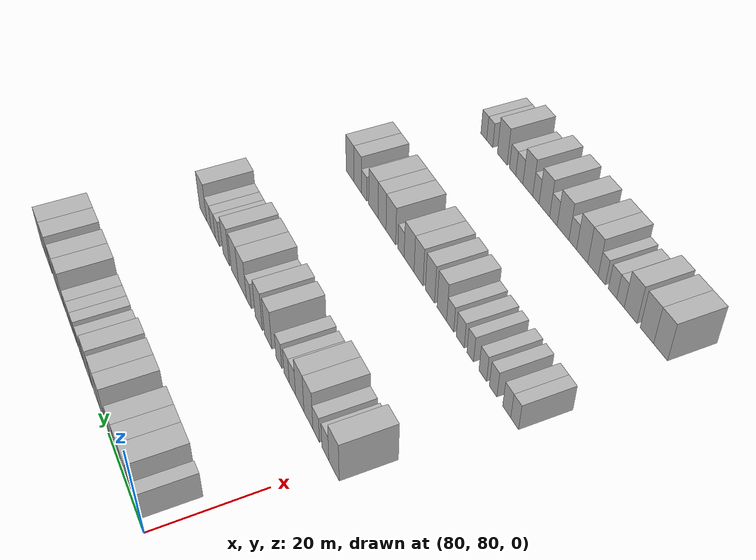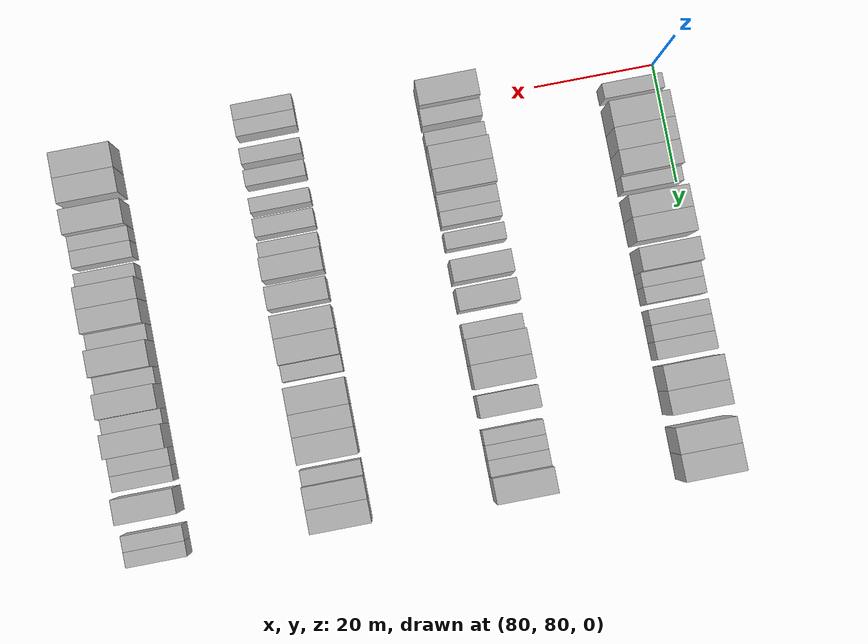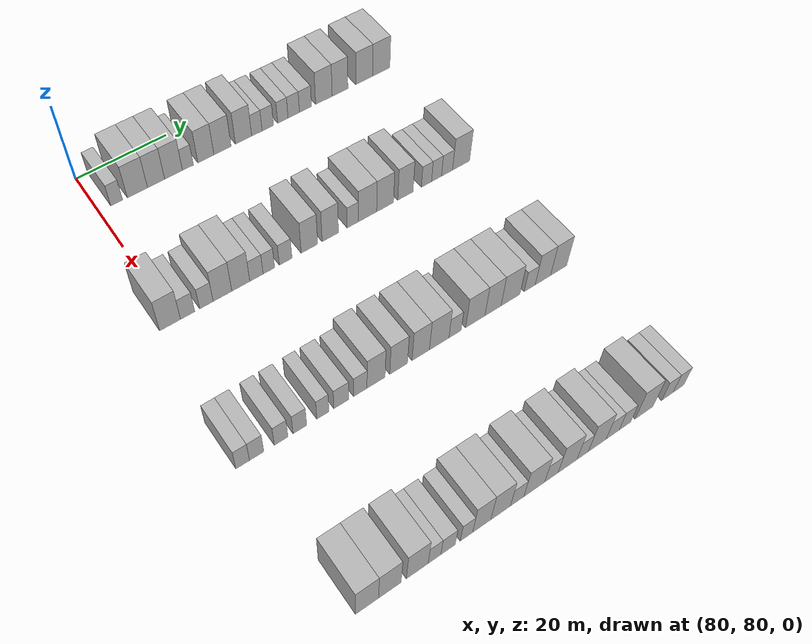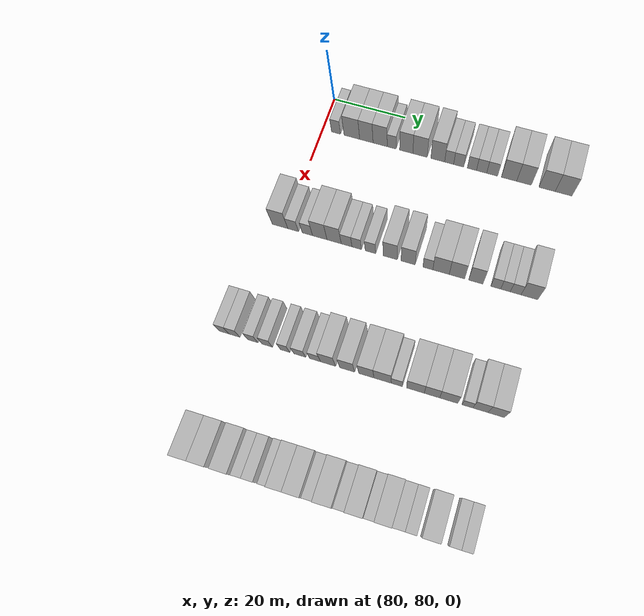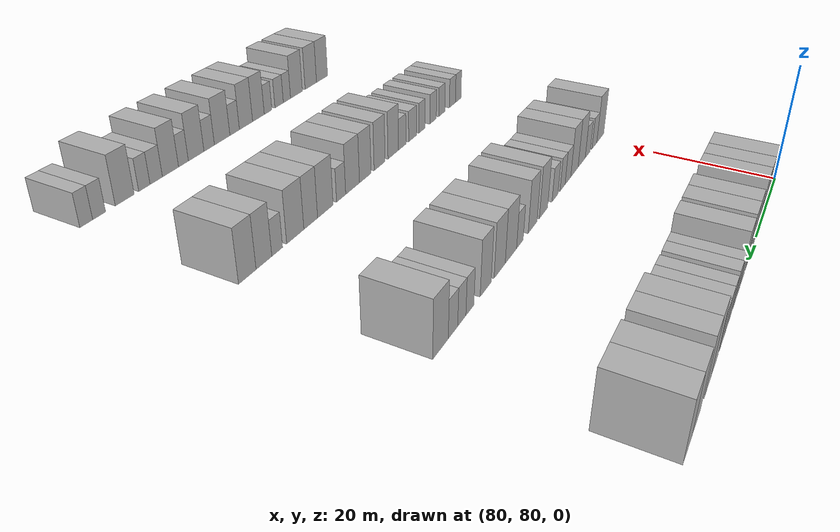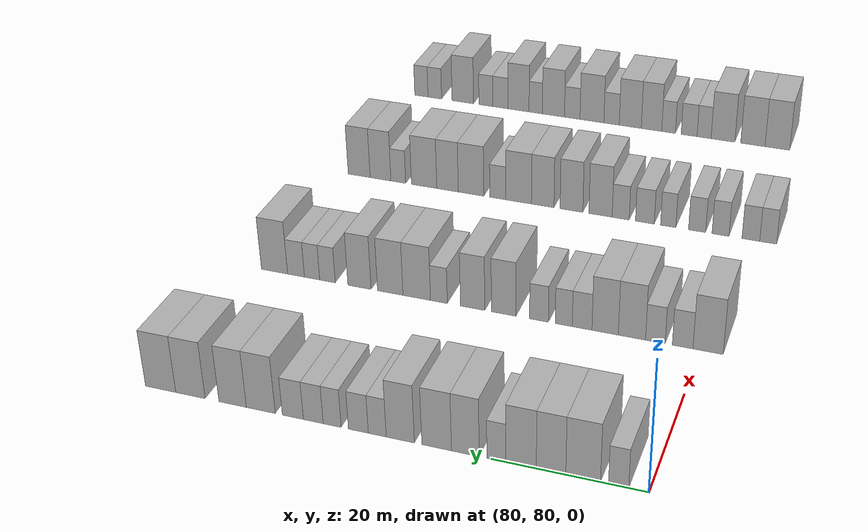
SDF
<sdf version="1.6">
 <world name="default">
  <model name="building_574">
   <static>1</static>
   <pose>85.0000 83.8093 0 0.000000 0.000000 0.000000</pose>
   <link name="link">
    <pose>0 0 3.00 0 0 0</pose>
    <collision name="collision"><geometry><box><size>10.0000 2.5199 6.0000</size></box></geometry></collision>
    <visual name="visual">
     <cast_shadows>0</cast_shadows>
     <geometry><box><size>10.0000 2.5199 6.0000</size></box></geometry>
     <material>
      <script>
       <uri>model://HANNAS_wall/materials/scripts</uri>
       <uri>model://HANNAS_wall/materials/textures</uri>
       <name>vrc/HANNAS_wall</name>
      </script>
     </material>
    </visual>
   </link>
  </model>
  <model name="building_575">
   <static>1</static>
   <pose>85.0000 88.2543 0 0.000000 0.000000 0.000000</pose>
   <link name="link">
    <pose>0 0 4.50 0 0 0</pose>
    <collision name="collision"><geometry><box><size>10.0000 4.3701 9.0000</size></box></geometry></collision>
    <visual name="visual">
     <cast_shadows>0</cast_shadows>
     <geometry><box><size>10.0000 4.3701 9.0000</size></box></geometry>
     <material>
      <script>
       <uri>model://HANNAS_wall/materials/scripts</uri>
       <uri>model://HANNAS_wall/materials/textures</uri>
       <name>vrc/HANNAS_wall</name>
      </script>
     </material>
    </visual>
   </link>
  </model>
  <model name="building_576">
   <static>1</static>
   <pose>85.0000 92.3146 0 0.000000 0.000000 0.000000</pose>
   <link name="link">
    <pose>0 0 4.50 0 0 0</pose>
    <collision name="collision"><geometry><box><size>10.0000 3.7505 9.0000</size></box></geometry></collision>
    <visual name="visual">
     <cast_shadows>0</cast_shadows>
     <geometry><box><size>10.0000 3.7505 9.0000</size></box></geometry>
     <material>
      <script>
       <uri>model://HANNAS_wall/materials/scripts</uri>
       <uri>model://HANNAS_wall/materials/textures</uri>
       <name>vrc/HANNAS_wall</name>
      </script>
     </material>
    </visual>
   </link>
  </model>
  <model name="building_577">
   <static>1</static>
   <pose>85.0000 96.1605 0 0.000000 0.000000 0.000000</pose>
   <link name="link">
    <pose>0 0 4.50 0 0 0</pose>
    <collision name="collision"><geometry><box><size>10.0000 3.9413 9.0000</size></box></geometry></collision>
    <visual name="visual">
     <cast_shadows>0</cast_shadows>
     <geometry><box><size>10.0000 3.9413 9.0000</size></box></geometry>
     <material>
      <script>
       <uri>model://HANNAS_wall/materials/scripts</uri>
       <uri>model://HANNAS_wall/materials/textures</uri>
       <name>vrc/HANNAS_wall</name>
      </script>
     </material>
    </visual>
   </link>
  </model>
  <model name="building_578">
   <static>1</static>
   <pose>85.0000 99.3531 0 0.000000 0.000000 0.000000</pose>
   <link name="link">
    <pose>0 0 3.00 0 0 0</pose>
    <collision name="collision"><geometry><box><size>10.0000 2.4439 6.0000</size></box></geometry></collision>
    <visual name="visual">
     <cast_shadows>0</cast_shadows>
     <geometry><box><size>10.0000 2.4439 6.0000</size></box></geometry>
     <material>
      <script>
       <uri>model://HANNAS_wall/materials/scripts</uri>
       <uri>model://HANNAS_wall/materials/textures</uri>
       <name>vrc/HANNAS_wall</name>
      </script>
     </material>
    </visual>
   </link>
  </model>
  <model name="building_579">
   <static>1</static>
   <pose>85.0000 103.3974 0 0.000000 0.000000 0.000000</pose>
   <link name="link">
    <pose>0 0 4.50 0 0 0</pose>
    <collision name="collision"><geometry><box><size>10.0000 3.6447 9.0000</size></box></geometry></collision>
    <visual name="visual">
     <cast_shadows>0</cast_shadows>
     <geometry><box><size>10.0000 3.6447 9.0000</size></box></geometry>
     <material>
      <script>
       <uri>model://HANNAS_wall/materials/scripts</uri>
       <uri>model://HANNAS_wall/materials/textures</uri>
       <name>vrc/HANNAS_wall</name>
      </script>
     </material>
    </visual>
   </link>
  </model>
  <model name="building_580">
   <static>1</static>
   <pose>85.0000 107.1895 0 0.000000 0.000000 0.000000</pose>
   <link name="link">
    <pose>0 0 4.50 0 0 0</pose>
    <collision name="collision"><geometry><box><size>10.0000 3.9395 9.0000</size></box></geometry></collision>
    <visual name="visual">
     <cast_shadows>0</cast_shadows>
     <geometry><box><size>10.0000 3.9395 9.0000</size></box></geometry>
     <material>
      <script>
       <uri>model://HANNAS_wall/materials/scripts</uri>
       <uri>model://HANNAS_wall/materials/textures</uri>
       <name>vrc/HANNAS_wall</name>
      </script>
     </material>
    </visual>
   </link>
  </model>
  <model name="building_581">
   <static>1</static>
   <pose>85.0000 112.0543 0 0.000000 0.000000 0.000000</pose>
   <link name="link">
    <pose>0 0 4.50 0 0 0</pose>
    <collision name="collision"><geometry><box><size>10.0000 3.7901 9.0000</size></box></geometry></collision>
    <visual name="visual">
     <cast_shadows>0</cast_shadows>
     <geometry><box><size>10.0000 3.7901 9.0000</size></box></geometry>
     <material>
      <script>
       <uri>model://HANNAS_wall/materials/scripts</uri>
       <uri>model://HANNAS_wall/materials/textures</uri>
       <name>vrc/HANNAS_wall</name>
      </script>
     </material>
    </visual>
   </link>
  </model>
  <model name="building_582">
   <static>1</static>
   <pose>85.0000 115.1677 0 0.000000 0.000000 0.000000</pose>
   <link name="link">
    <pose>0 0 3.00 0 0 0</pose>
    <collision name="collision"><geometry><box><size>10.0000 2.4367 6.0000</size></box></geometry></collision>
    <visual name="visual">
     <cast_shadows>0</cast_shadows>
     <geometry><box><size>10.0000 2.4367 6.0000</size></box></geometry>
     <material>
      <script>
       <uri>model://HANNAS_wall/materials/scripts</uri>
       <uri>model://HANNAS_wall/materials/textures</uri>
       <name>vrc/HANNAS_wall</name>
      </script>
     </material>
    </visual>
   </link>
  </model>
  <model name="building_583">
   <static>1</static>
   <pose>85.0000 117.7441 0 0.000000 0.000000 0.000000</pose>
   <link name="link">
    <pose>0 0 3.00 0 0 0</pose>
    <collision name="collision"><geometry><box><size>10.0000 2.7161 6.0000</size></box></geometry></collision>
    <visual name="visual">
     <cast_shadows>0</cast_shadows>
     <geometry><box><size>10.0000 2.7161 6.0000</size></box></geometry>
     <material>
      <script>
       <uri>model://HANNAS_wall/materials/scripts</uri>
       <uri>model://HANNAS_wall/materials/textures</uri>
       <name>vrc/HANNAS_wall</name>
      </script>
     </material>
    </visual>
   </link>
  </model>
  <model name="building_584">
   <static>1</static>
   <pose>85.0000 121.3436 0 0.000000 0.000000 0.000000</pose>
   <link name="link">
    <pose>0 0 3.00 0 0 0</pose>
    <collision name="collision"><geometry><box><size>10.0000 2.4829 6.0000</size></box></geometry></collision>
    <visual name="visual">
     <cast_shadows>0</cast_shadows>
     <geometry><box><size>10.0000 2.4829 6.0000</size></box></geometry>
     <material>
      <script>
       <uri>model://HANNAS_wall/materials/scripts</uri>
       <uri>model://HANNAS_wall/materials/textures</uri>
       <name>vrc/HANNAS_wall</name>
      </script>
     </material>
    </visual>
   </link>
  </model>
  <model name="building_585">
   <static>1</static>
   <pose>85.0000 123.9598 0 0.000000 0.000000 0.000000</pose>
   <link name="link">
    <pose>0 0 3.00 0 0 0</pose>
    <collision name="collision"><geometry><box><size>10.0000 2.7496 6.0000</size></box></geometry></collision>
    <visual name="visual">
     <cast_shadows>0</cast_shadows>
     <geometry><box><size>10.0000 2.7496 6.0000</size></box></geometry>
     <material>
      <script>
       <uri>model://HANNAS_wall/materials/scripts</uri>
       <uri>model://HANNAS_wall/materials/textures</uri>
       <name>vrc/HANNAS_wall</name>
      </script>
     </material>
    </visual>
   </link>
  </model>
  <model name="building_586">
   <static>1</static>
   <pose>85.0000 126.8068 0 0.000000 0.000000 0.000000</pose>
   <link name="link">
    <pose>0 0 3.00 0 0 0</pose>
    <collision name="collision"><geometry><box><size>10.0000 2.9442 6.0000</size></box></geometry></collision>
    <visual name="visual">
     <cast_shadows>0</cast_shadows>
     <geometry><box><size>10.0000 2.9442 6.0000</size></box></geometry>
     <material>
      <script>
       <uri>model://HANNAS_wall/materials/scripts</uri>
       <uri>model://HANNAS_wall/materials/textures</uri>
       <name>vrc/HANNAS_wall</name>
      </script>
     </material>
    </visual>
   </link>
  </model>
  <model name="building_587">
   <static>1</static>
   <pose>85.0000 131.3280 0 0.000000 0.000000 0.000000</pose>
   <link name="link">
    <pose>0 0 4.50 0 0 0</pose>
    <collision name="collision"><geometry><box><size>10.0000 4.0982 9.0000</size></box></geometry></collision>
    <visual name="visual">
     <cast_shadows>0</cast_shadows>
     <geometry><box><size>10.0000 4.0982 9.0000</size></box></geometry>
     <material>
      <script>
       <uri>model://HANNAS_wall/materials/scripts</uri>
       <uri>model://HANNAS_wall/materials/textures</uri>
       <name>vrc/HANNAS_wall</name>
      </script>
     </material>
    </visual>
   </link>
  </model>
  <model name="building_588">
   <static>1</static>
   <pose>85.0000 135.3434 0 0.000000 0.000000 0.000000</pose>
   <link name="link">
    <pose>0 0 4.50 0 0 0</pose>
    <collision name="collision"><geometry><box><size>10.0000 3.9326 9.0000</size></box></geometry></collision>
    <visual name="visual">
     <cast_shadows>0</cast_shadows>
     <geometry><box><size>10.0000 3.9326 9.0000</size></box></geometry>
     <material>
      <script>
       <uri>model://HANNAS_wall/materials/scripts</uri>
       <uri>model://HANNAS_wall/materials/textures</uri>
       <name>vrc/HANNAS_wall</name>
      </script>
     </material>
    </visual>
   </link>
  </model>
  <model name="building_589">
   <static>1</static>
   <pose>85.0000 141.4507 0 0.000000 0.000000 0.000000</pose>
   <link name="link">
    <pose>0 0 4.50 0 0 0</pose>
    <collision name="collision"><geometry><box><size>10.0000 4.2819 9.0000</size></box></geometry></collision>
    <visual name="visual">
     <cast_shadows>0</cast_shadows>
     <geometry><box><size>10.0000 4.2819 9.0000</size></box></geometry>
     <material>
      <script>
       <uri>model://HANNAS_wall/materials/scripts</uri>
       <uri>model://HANNAS_wall/materials/textures</uri>
       <name>vrc/HANNAS_wall</name>
      </script>
     </material>
    </visual>
   </link>
  </model>
  <model name="building_590">
   <static>1</static>
   <pose>85.0000 145.8151 0 0.000000 0.000000 0.000000</pose>
   <link name="link">
    <pose>0 0 4.50 0 0 0</pose>
    <collision name="collision"><geometry><box><size>10.0000 4.4469 9.0000</size></box></geometry></collision>
    <visual name="visual">
     <cast_shadows>0</cast_shadows>
     <geometry><box><size>10.0000 4.4469 9.0000</size></box></geometry>
     <material>
      <script>
       <uri>model://HANNAS_wall/materials/scripts</uri>
       <uri>model://HANNAS_wall/materials/textures</uri>
       <name>vrc/HANNAS_wall</name>
      </script>
     </material>
    </visual>
   </link>
  </model>
  <model name="building_804">
   <static>1</static>
   <pose>115.0000 78.9690 0 0.000000 0.000000 0.000000</pose>
   <link name="link">
    <pose>0 0 4.50 0 0 0</pose>
    <collision name="collision"><geometry><box><size>10.0000 4.1811 9.0000</size></box></geometry></collision>
    <visual name="visual">
     <cast_shadows>0</cast_shadows>
     <geometry><box><size>10.0000 4.1811 9.0000</size></box></geometry>
     <material>
      <script>
       <uri>model://HANNAS_wall/materials/scripts</uri>
       <uri>model://HANNAS_wall/materials/textures</uri>
       <name>vrc/HANNAS_wall</name>
      </script>
     </material>
    </visual>
   </link>
  </model>
  <model name="building_805">
   <static>1</static>
   <pose>115.0000 82.4966 0 0.000000 0.000000 0.000000</pose>
   <link name="link">
    <pose>0 0 3.00 0 0 0</pose>
    <collision name="collision"><geometry><box><size>10.0000 2.8740 6.0000</size></box></geometry></collision>
    <visual name="visual">
     <cast_shadows>0</cast_shadows>
     <geometry><box><size>10.0000 2.8740 6.0000</size></box></geometry>
     <material>
      <script>
       <uri>model://HANNAS_wall/materials/scripts</uri>
       <uri>model://HANNAS_wall/materials/textures</uri>
       <name>vrc/HANNAS_wall</name>
      </script>
     </material>
    </visual>
   </link>
  </model>
  <model name="building_806">
   <static>1</static>
   <pose>115.0000 86.3173 0 0.000000 0.000000 0.000000</pose>
   <link name="link">
    <pose>0 0 3.00 0 0 0</pose>
    <collision name="collision"><geometry><box><size>10.0000 2.7675 6.0000</size></box></geometry></collision>
    <visual name="visual">
     <cast_shadows>0</cast_shadows>
     <geometry><box><size>10.0000 2.7675 6.0000</size></box></geometry>
     <material>
      <script>
       <uri>model://HANNAS_wall/materials/scripts</uri>
       <uri>model://HANNAS_wall/materials/textures</uri>
       <name>vrc/HANNAS_wall</name>
      </script>
     </material>
    </visual>
   </link>
  </model>
  <model name="building_807">
   <static>1</static>
   <pose>115.0000 89.6279 0 0.000000 0.000000 0.000000</pose>
   <link name="link">
    <pose>0 0 4.50 0 0 0</pose>
    <collision name="collision"><geometry><box><size>10.0000 3.8535 9.0000</size></box></geometry></collision>
    <visual name="visual">
     <cast_shadows>0</cast_shadows>
     <geometry><box><size>10.0000 3.8535 9.0000</size></box></geometry>
     <material>
      <script>
       <uri>model://HANNAS_wall/materials/scripts</uri>
       <uri>model://HANNAS_wall/materials/textures</uri>
       <name>vrc/HANNAS_wall</name>
      </script>
     </material>
    </visual>
   </link>
  </model>
  <model name="building_808">
   <static>1</static>
   <pose>115.0000 93.4406 0 0.000000 0.000000 0.000000</pose>
   <link name="link">
    <pose>0 0 4.50 0 0 0</pose>
    <collision name="collision"><geometry><box><size>10.0000 3.7720 9.0000</size></box></geometry></collision>
    <visual name="visual">
     <cast_shadows>0</cast_shadows>
     <geometry><box><size>10.0000 3.7720 9.0000</size></box></geometry>
     <material>
      <script>
       <uri>model://HANNAS_wall/materials/scripts</uri>
       <uri>model://HANNAS_wall/materials/textures</uri>
       <name>vrc/HANNAS_wall</name>
      </script>
     </material>
    </visual>
   </link>
  </model>
  <model name="building_809">
   <static>1</static>
   <pose>115.0000 96.7467 0 0.000000 0.000000 0.000000</pose>
   <link name="link">
    <pose>0 0 3.00 0 0 0</pose>
    <collision name="collision"><geometry><box><size>10.0000 2.8402 6.0000</size></box></geometry></collision>
    <visual name="visual">
     <cast_shadows>0</cast_shadows>
     <geometry><box><size>10.0000 2.8402 6.0000</size></box></geometry>
     <material>
      <script>
       <uri>model://HANNAS_wall/materials/scripts</uri>
       <uri>model://HANNAS_wall/materials/textures</uri>
       <name>vrc/HANNAS_wall</name>
      </script>
     </material>
    </visual>
   </link>
  </model>
  <model name="building_810">
   <static>1</static>
   <pose>115.0000 99.4016 0 0.000000 0.000000 0.000000</pose>
   <link name="link">
    <pose>0 0 3.00 0 0 0</pose>
    <collision name="collision"><geometry><box><size>10.0000 2.4697 6.0000</size></box></geometry></collision>
    <visual name="visual">
     <cast_shadows>0</cast_shadows>
     <geometry><box><size>10.0000 2.4697 6.0000</size></box></geometry>
     <material>
      <script>
       <uri>model://HANNAS_wall/materials/scripts</uri>
       <uri>model://HANNAS_wall/materials/textures</uri>
       <name>vrc/HANNAS_wall</name>
      </script>
     </material>
    </visual>
   </link>
  </model>
  <model name="building_811">
   <static>1</static>
   <pose>115.0000 103.0163 0 0.000000 0.000000 0.000000</pose>
   <link name="link">
    <pose>0 0 3.00 0 0 0</pose>
    <collision name="collision"><geometry><box><size>10.0000 2.7596 6.0000</size></box></geometry></collision>
    <visual name="visual">
     <cast_shadows>0</cast_shadows>
     <geometry><box><size>10.0000 2.7596 6.0000</size></box></geometry>
     <material>
      <script>
       <uri>model://HANNAS_wall/materials/scripts</uri>
       <uri>model://HANNAS_wall/materials/textures</uri>
       <name>vrc/HANNAS_wall</name>
      </script>
     </material>
    </visual>
   </link>
  </model>
  <model name="building_812">
   <static>1</static>
   <pose>115.0000 108.2145 0 0.000000 0.000000 0.000000</pose>
   <link name="link">
    <pose>0 0 4.50 0 0 0</pose>
    <collision name="collision"><geometry><box><size>10.0000 3.6370 9.0000</size></box></geometry></collision>
    <visual name="visual">
     <cast_shadows>0</cast_shadows>
     <geometry><box><size>10.0000 3.6370 9.0000</size></box></geometry>
     <material>
      <script>
       <uri>model://HANNAS_wall/materials/scripts</uri>
       <uri>model://HANNAS_wall/materials/textures</uri>
       <name>vrc/HANNAS_wall</name>
      </script>
     </material>
    </visual>
   </link>
  </model>
  <model name="building_813">
   <static>1</static>
   <pose>115.0000 112.8568 0 0.000000 0.000000 0.000000</pose>
   <link name="link">
    <pose>0 0 4.50 0 0 0</pose>
    <collision name="collision"><geometry><box><size>10.0000 3.6476 9.0000</size></box></geometry></collision>
    <visual name="visual">
     <cast_shadows>0</cast_shadows>
     <geometry><box><size>10.0000 3.6476 9.0000</size></box></geometry>
     <material>
      <script>
       <uri>model://HANNAS_wall/materials/scripts</uri>
       <uri>model://HANNAS_wall/materials/textures</uri>
       <name>vrc/HANNAS_wall</name>
      </script>
     </material>
    </visual>
   </link>
  </model>
  <model name="building_814">
   <static>1</static>
   <pose>115.0000 117.9589 0 0.000000 0.000000 0.000000</pose>
   <link name="link">
    <pose>0 0 3.00 0 0 0</pose>
    <collision name="collision"><geometry><box><size>10.0000 2.5567 6.0000</size></box></geometry></collision>
    <visual name="visual">
     <cast_shadows>0</cast_shadows>
     <geometry><box><size>10.0000 2.5567 6.0000</size></box></geometry>
     <material>
      <script>
       <uri>model://HANNAS_wall/materials/scripts</uri>
       <uri>model://HANNAS_wall/materials/textures</uri>
       <name>vrc/HANNAS_wall</name>
      </script>
     </material>
    </visual>
   </link>
  </model>
  <model name="building_815">
   <static>1</static>
   <pose>115.0000 121.3464 0 0.000000 0.000000 0.000000</pose>
   <link name="link">
    <pose>0 0 4.50 0 0 0</pose>
    <collision name="collision"><geometry><box><size>10.0000 4.2182 9.0000</size></box></geometry></collision>
    <visual name="visual">
     <cast_shadows>0</cast_shadows>
     <geometry><box><size>10.0000 4.2182 9.0000</size></box></geometry>
     <material>
      <script>
       <uri>model://HANNAS_wall/materials/scripts</uri>
       <uri>model://HANNAS_wall/materials/textures</uri>
       <name>vrc/HANNAS_wall</name>
      </script>
     </material>
    </visual>
   </link>
  </model>
  <model name="building_816">
   <static>1</static>
   <pose>115.0000 125.4284 0 0.000000 0.000000 0.000000</pose>
   <link name="link">
    <pose>0 0 4.50 0 0 0</pose>
    <collision name="collision"><geometry><box><size>10.0000 3.9459 9.0000</size></box></geometry></collision>
    <visual name="visual">
     <cast_shadows>0</cast_shadows>
     <geometry><box><size>10.0000 3.9459 9.0000</size></box></geometry>
     <material>
      <script>
       <uri>model://HANNAS_wall/materials/scripts</uri>
       <uri>model://HANNAS_wall/materials/textures</uri>
       <name>vrc/HANNAS_wall</name>
      </script>
     </material>
    </visual>
   </link>
  </model>
  <model name="building_817">
   <static>1</static>
   <pose>115.0000 130.2184 0 0.000000 0.000000 0.000000</pose>
   <link name="link">
    <pose>0 0 4.50 0 0 0</pose>
    <collision name="collision"><geometry><box><size>10.0000 3.6341 9.0000</size></box></geometry></collision>
    <visual name="visual">
     <cast_shadows>0</cast_shadows>
     <geometry><box><size>10.0000 3.6341 9.0000</size></box></geometry>
     <material>
      <script>
       <uri>model://HANNAS_wall/materials/scripts</uri>
       <uri>model://HANNAS_wall/materials/textures</uri>
       <name>vrc/HANNAS_wall</name>
      </script>
     </material>
    </visual>
   </link>
  </model>
  <model name="building_818">
   <static>1</static>
   <pose>115.0000 135.2668 0 0.000000 0.000000 0.000000</pose>
   <link name="link">
    <pose>0 0 3.00 0 0 0</pose>
    <collision name="collision"><geometry><box><size>10.0000 2.4627 6.0000</size></box></geometry></collision>
    <visual name="visual">
     <cast_shadows>0</cast_shadows>
     <geometry><box><size>10.0000 2.4627 6.0000</size></box></geometry>
     <material>
      <script>
       <uri>model://HANNAS_wall/materials/scripts</uri>
       <uri>model://HANNAS_wall/materials/textures</uri>
       <name>vrc/HANNAS_wall</name>
      </script>
     </material>
    </visual>
   </link>
  </model>
  <model name="building_819">
   <static>1</static>
   <pose>115.0000 137.7142 0 0.000000 0.000000 0.000000</pose>
   <link name="link">
    <pose>0 0 3.00 0 0 0</pose>
    <collision name="collision"><geometry><box><size>10.0000 2.4321 6.0000</size></box></geometry></collision>
    <visual name="visual">
     <cast_shadows>0</cast_shadows>
     <geometry><box><size>10.0000 2.4321 6.0000</size></box></geometry>
     <material>
      <script>
       <uri>model://HANNAS_wall/materials/scripts</uri>
       <uri>model://HANNAS_wall/materials/textures</uri>
       <name>vrc/HANNAS_wall</name>
      </script>
     </material>
    </visual>
   </link>
  </model>
  <model name="building_820">
   <static>1</static>
   <pose>115.0000 140.2826 0 0.000000 0.000000 0.000000</pose>
   <link name="link">
    <pose>0 0 3.00 0 0 0</pose>
    <collision name="collision"><geometry><box><size>10.0000 2.7048 6.0000</size></box></geometry></collision>
    <visual name="visual">
     <cast_shadows>0</cast_shadows>
     <geometry><box><size>10.0000 2.7048 6.0000</size></box></geometry>
     <material>
      <script>
       <uri>model://HANNAS_wall/materials/scripts</uri>
       <uri>model://HANNAS_wall/materials/textures</uri>
       <name>vrc/HANNAS_wall</name>
      </script>
     </material>
    </visual>
   </link>
  </model>
  <model name="building_821">
   <static>1</static>
   <pose>115.0000 143.7465 0 0.000000 0.000000 0.000000</pose>
   <link name="link">
    <pose>0 0 4.50 0 0 0</pose>
    <collision name="collision"><geometry><box><size>10.0000 4.2231 9.0000</size></box></geometry></collision>
    <visual name="visual">
     <cast_shadows>0</cast_shadows>
     <geometry><box><size>10.0000 4.2231 9.0000</size></box></geometry>
     <material>
      <script>
       <uri>model://HANNAS_wall/materials/scripts</uri>
       <uri>model://HANNAS_wall/materials/textures</uri>
       <name>vrc/HANNAS_wall</name>
      </script>
     </material>
    </visual>
   </link>
  </model>
  <model name="building_1034">
   <static>1</static>
   <pose>145.0000 75.8199 0 0.000000 0.000000 0.000000</pose>
   <link name="link">
    <pose>0 0 3.00 0 0 0</pose>
    <collision name="collision"><geometry><box><size>10.0000 2.5758 6.0000</size></box></geometry></collision>
    <visual name="visual">
     <cast_shadows>0</cast_shadows>
     <geometry><box><size>10.0000 2.5758 6.0000</size></box></geometry>
     <material>
      <script>
       <uri>model://HANNAS_wall/materials/scripts</uri>
       <uri>model://HANNAS_wall/materials/textures</uri>
       <name>vrc/HANNAS_wall</name>
      </script>
     </material>
    </visual>
   </link>
  </model>
  <model name="building_1035">
   <static>1</static>
   <pose>145.0000 78.4676 0 0.000000 0.000000 0.000000</pose>
   <link name="link">
    <pose>0 0 3.00 0 0 0</pose>
    <collision name="collision"><geometry><box><size>10.0000 2.7195 6.0000</size></box></geometry></collision>
    <visual name="visual">
     <cast_shadows>0</cast_shadows>
     <geometry><box><size>10.0000 2.7195 6.0000</size></box></geometry>
     <material>
      <script>
       <uri>model://HANNAS_wall/materials/scripts</uri>
       <uri>model://HANNAS_wall/materials/textures</uri>
       <name>vrc/HANNAS_wall</name>
      </script>
     </material>
    </visual>
   </link>
  </model>
  <model name="building_1036">
   <static>1</static>
   <pose>145.0000 83.1409 0 0.000000 0.000000 0.000000</pose>
   <link name="link">
    <pose>0 0 3.00 0 0 0</pose>
    <collision name="collision"><geometry><box><size>10.0000 2.6271 6.0000</size></box></geometry></collision>
    <visual name="visual">
     <cast_shadows>0</cast_shadows>
     <geometry><box><size>10.0000 2.6271 6.0000</size></box></geometry>
     <material>
      <script>
       <uri>model://HANNAS_wall/materials/scripts</uri>
       <uri>model://HANNAS_wall/materials/textures</uri>
       <name>vrc/HANNAS_wall</name>
      </script>
     </material>
    </visual>
   </link>
  </model>
  <model name="building_1037">
   <static>1</static>
   <pose>145.0000 86.7867 0 0.000000 0.000000 0.000000</pose>
   <link name="link">
    <pose>0 0 3.00 0 0 0</pose>
    <collision name="collision"><geometry><box><size>10.0000 2.6646 6.0000</size></box></geometry></collision>
    <visual name="visual">
     <cast_shadows>0</cast_shadows>
     <geometry><box><size>10.0000 2.6646 6.0000</size></box></geometry>
     <material>
      <script>
       <uri>model://HANNAS_wall/materials/scripts</uri>
       <uri>model://HANNAS_wall/materials/textures</uri>
       <name>vrc/HANNAS_wall</name>
      </script>
     </material>
    </visual>
   </link>
  </model>
  <model name="building_1038">
   <static>1</static>
   <pose>145.0000 91.3214 0 0.000000 0.000000 0.000000</pose>
   <link name="link">
    <pose>0 0 3.00 0 0 0</pose>
    <collision name="collision"><geometry><box><size>10.0000 2.4048 6.0000</size></box></geometry></collision>
    <visual name="visual">
     <cast_shadows>0</cast_shadows>
     <geometry><box><size>10.0000 2.4048 6.0000</size></box></geometry>
     <material>
      <script>
       <uri>model://HANNAS_wall/materials/scripts</uri>
       <uri>model://HANNAS_wall/materials/textures</uri>
       <name>vrc/HANNAS_wall</name>
      </script>
     </material>
    </visual>
   </link>
  </model>
  <model name="building_1039">
   <static>1</static>
   <pose>145.0000 95.0201 0 0.000000 0.000000 0.000000</pose>
   <link name="link">
    <pose>0 0 3.00 0 0 0</pose>
    <collision name="collision"><geometry><box><size>10.0000 2.9926 6.0000</size></box></geometry></collision>
    <visual name="visual">
     <cast_shadows>0</cast_shadows>
     <geometry><box><size>10.0000 2.9926 6.0000</size></box></geometry>
     <material>
      <script>
       <uri>model://HANNAS_wall/materials/scripts</uri>
       <uri>model://HANNAS_wall/materials/textures</uri>
       <name>vrc/HANNAS_wall</name>
      </script>
     </material>
    </visual>
   </link>
  </model>
  <model name="building_1040">
   <static>1</static>
   <pose>145.0000 98.8875 0 0.000000 0.000000 0.000000</pose>
   <link name="link">
    <pose>0 0 3.00 0 0 0</pose>
    <collision name="collision"><geometry><box><size>10.0000 2.7421 6.0000</size></box></geometry></collision>
    <visual name="visual">
     <cast_shadows>0</cast_shadows>
     <geometry><box><size>10.0000 2.7421 6.0000</size></box></geometry>
     <material>
      <script>
       <uri>model://HANNAS_wall/materials/scripts</uri>
       <uri>model://HANNAS_wall/materials/textures</uri>
       <name>vrc/HANNAS_wall</name>
      </script>
     </material>
    </visual>
   </link>
  </model>
  <model name="building_1041">
   <static>1</static>
   <pose>145.0000 102.1334 0 0.000000 0.000000 0.000000</pose>
   <link name="link">
    <pose>0 0 4.50 0 0 0</pose>
    <collision name="collision"><geometry><box><size>10.0000 3.7497 9.0000</size></box></geometry></collision>
    <visual name="visual">
     <cast_shadows>0</cast_shadows>
     <geometry><box><size>10.0000 3.7497 9.0000</size></box></geometry>
     <material>
      <script>
       <uri>model://HANNAS_wall/materials/scripts</uri>
       <uri>model://HANNAS_wall/materials/textures</uri>
       <name>vrc/HANNAS_wall</name>
      </script>
     </material>
    </visual>
   </link>
  </model>
  <model name="building_1042">
   <static>1</static>
   <pose>145.0000 106.8622 0 0.000000 0.000000 0.000000</pose>
   <link name="link">
    <pose>0 0 4.50 0 0 0</pose>
    <collision name="collision"><geometry><box><size>10.0000 3.7079 9.0000</size></box></geometry></collision>
    <visual name="visual">
     <cast_shadows>0</cast_shadows>
     <geometry><box><size>10.0000 3.7079 9.0000</size></box></geometry>
     <material>
      <script>
       <uri>model://HANNAS_wall/materials/scripts</uri>
       <uri>model://HANNAS_wall/materials/textures</uri>
       <name>vrc/HANNAS_wall</name>
      </script>
     </material>
    </visual>
   </link>
  </model>
  <model name="building_1043">
   <static>1</static>
   <pose>145.0000 111.5797 0 0.000000 0.000000 0.000000</pose>
   <link name="link">
    <pose>0 0 4.50 0 0 0</pose>
    <collision name="collision"><geometry><box><size>10.0000 3.7270 9.0000</size></box></geometry></collision>
    <visual name="visual">
     <cast_shadows>0</cast_shadows>
     <geometry><box><size>10.0000 3.7270 9.0000</size></box></geometry>
     <material>
      <script>
       <uri>model://HANNAS_wall/materials/scripts</uri>
       <uri>model://HANNAS_wall/materials/textures</uri>
       <name>vrc/HANNAS_wall</name>
      </script>
     </material>
    </visual>
   </link>
  </model>
  <model name="building_1044">
   <static>1</static>
   <pose>145.0000 115.5649 0 0.000000 0.000000 0.000000</pose>
   <link name="link">
    <pose>0 0 4.50 0 0 0</pose>
    <collision name="collision"><geometry><box><size>10.0000 4.2435 9.0000</size></box></geometry></collision>
    <visual name="visual">
     <cast_shadows>0</cast_shadows>
     <geometry><box><size>10.0000 4.2435 9.0000</size></box></geometry>
     <material>
      <script>
       <uri>model://HANNAS_wall/materials/scripts</uri>
       <uri>model://HANNAS_wall/materials/textures</uri>
       <name>vrc/HANNAS_wall</name>
      </script>
     </material>
    </visual>
   </link>
  </model>
  <model name="building_1045">
   <static>1</static>
   <pose>145.0000 119.0385 0 0.000000 0.000000 0.000000</pose>
   <link name="link">
    <pose>0 0 3.00 0 0 0</pose>
    <collision name="collision"><geometry><box><size>10.0000 2.7037 6.0000</size></box></geometry></collision>
    <visual name="visual">
     <cast_shadows>0</cast_shadows>
     <geometry><box><size>10.0000 2.7037 6.0000</size></box></geometry>
     <material>
      <script>
       <uri>model://HANNAS_wall/materials/scripts</uri>
       <uri>model://HANNAS_wall/materials/textures</uri>
       <name>vrc/HANNAS_wall</name>
      </script>
     </material>
    </visual>
   </link>
  </model>
  <model name="building_1046">
   <static>1</static>
   <pose>145.0000 123.5517 0 0.000000 0.000000 0.000000</pose>
   <link name="link">
    <pose>0 0 4.50 0 0 0</pose>
    <collision name="collision"><geometry><box><size>10.0000 4.3227 9.0000</size></box></geometry></collision>
    <visual name="visual">
     <cast_shadows>0</cast_shadows>
     <geometry><box><size>10.0000 4.3227 9.0000</size></box></geometry>
     <material>
      <script>
       <uri>model://HANNAS_wall/materials/scripts</uri>
       <uri>model://HANNAS_wall/materials/textures</uri>
       <name>vrc/HANNAS_wall</name>
      </script>
     </material>
    </visual>
   </link>
  </model>
  <model name="building_1047">
   <static>1</static>
   <pose>145.0000 127.5515 0 0.000000 0.000000 0.000000</pose>
   <link name="link">
    <pose>0 0 4.50 0 0 0</pose>
    <collision name="collision"><geometry><box><size>10.0000 3.6769 9.0000</size></box></geometry></collision>
    <visual name="visual">
     <cast_shadows>0</cast_shadows>
     <geometry><box><size>10.0000 3.6769 9.0000</size></box></geometry>
     <material>
      <script>
       <uri>model://HANNAS_wall/materials/scripts</uri>
       <uri>model://HANNAS_wall/materials/textures</uri>
       <name>vrc/HANNAS_wall</name>
      </script>
     </material>
    </visual>
   </link>
  </model>
  <model name="building_1048">
   <static>1</static>
   <pose>145.0000 131.5744 0 0.000000 0.000000 0.000000</pose>
   <link name="link">
    <pose>0 0 4.50 0 0 0</pose>
    <collision name="collision"><geometry><box><size>10.0000 4.3689 9.0000</size></box></geometry></collision>
    <visual name="visual">
     <cast_shadows>0</cast_shadows>
     <geometry><box><size>10.0000 4.3689 9.0000</size></box></geometry>
     <material>
      <script>
       <uri>model://HANNAS_wall/materials/scripts</uri>
       <uri>model://HANNAS_wall/materials/textures</uri>
       <name>vrc/HANNAS_wall</name>
      </script>
     </material>
    </visual>
   </link>
  </model>
  <model name="building_1049">
   <static>1</static>
   <pose>145.0000 136.0474 0 0.000000 0.000000 0.000000</pose>
   <link name="link">
    <pose>0 0 3.00 0 0 0</pose>
    <collision name="collision"><geometry><box><size>10.0000 2.5770 6.0000</size></box></geometry></collision>
    <visual name="visual">
     <cast_shadows>0</cast_shadows>
     <geometry><box><size>10.0000 2.5770 6.0000</size></box></geometry>
     <material>
      <script>
       <uri>model://HANNAS_wall/materials/scripts</uri>
       <uri>model://HANNAS_wall/materials/textures</uri>
       <name>vrc/HANNAS_wall</name>
      </script>
     </material>
    </visual>
   </link>
  </model>
  <model name="building_1050">
   <static>1</static>
   <pose>145.0000 139.1558 0 0.000000 0.000000 0.000000</pose>
   <link name="link">
    <pose>0 0 4.50 0 0 0</pose>
    <collision name="collision"><geometry><box><size>10.0000 3.6399 9.0000</size></box></geometry></collision>
    <visual name="visual">
     <cast_shadows>0</cast_shadows>
     <geometry><box><size>10.0000 3.6399 9.0000</size></box></geometry>
     <material>
      <script>
       <uri>model://HANNAS_wall/materials/scripts</uri>
       <uri>model://HANNAS_wall/materials/textures</uri>
       <name>vrc/HANNAS_wall</name>
      </script>
     </material>
    </visual>
   </link>
  </model>
  <model name="building_1051">
   <static>1</static>
   <pose>145.0000 142.9027 0 0.000000 0.000000 0.000000</pose>
   <link name="link">
    <pose>0 0 4.50 0 0 0</pose>
    <collision name="collision"><geometry><box><size>10.0000 3.8538 9.0000</size></box></geometry></collision>
    <visual name="visual">
     <cast_shadows>0</cast_shadows>
     <geometry><box><size>10.0000 3.8538 9.0000</size></box></geometry>
     <material>
      <script>
       <uri>model://HANNAS_wall/materials/scripts</uri>
       <uri>model://HANNAS_wall/materials/textures</uri>
       <name>vrc/HANNAS_wall</name>
      </script>
     </material>
    </visual>
   </link>
  </model>
  <model name="building_1267">
   <static>1</static>
   <pose>175.0000 79.3275 0 0.000000 0.000000 0.000000</pose>
   <link name="link">
    <pose>0 0 4.50 0 0 0</pose>
    <collision name="collision"><geometry><box><size>10.0000 4.1845 9.0000</size></box></geometry></collision>
    <visual name="visual">
     <cast_shadows>0</cast_shadows>
     <geometry><box><size>10.0000 4.1845 9.0000</size></box></geometry>
     <material>
      <script>
       <uri>model://HANNAS_wall/materials/scripts</uri>
       <uri>model://HANNAS_wall/materials/textures</uri>
       <name>vrc/HANNAS_wall</name>
      </script>
     </material>
    </visual>
   </link>
  </model>
  <model name="building_1268">
   <static>1</static>
   <pose>175.0000 83.4908 0 0.000000 0.000000 0.000000</pose>
   <link name="link">
    <pose>0 0 4.50 0 0 0</pose>
    <collision name="collision"><geometry><box><size>10.0000 4.1421 9.0000</size></box></geometry></collision>
    <visual name="visual">
     <cast_shadows>0</cast_shadows>
     <geometry><box><size>10.0000 4.1421 9.0000</size></box></geometry>
     <material>
      <script>
       <uri>model://HANNAS_wall/materials/scripts</uri>
       <uri>model://HANNAS_wall/materials/textures</uri>
       <name>vrc/HANNAS_wall</name>
      </script>
     </material>
    </visual>
   </link>
  </model>
  <model name="building_1269">
   <static>1</static>
   <pose>175.0000 88.6101 0 0.000000 0.000000 0.000000</pose>
   <link name="link">
    <pose>0 0 4.50 0 0 0</pose>
    <collision name="collision"><geometry><box><size>10.0000 4.0965 9.0000</size></box></geometry></collision>
    <visual name="visual">
     <cast_shadows>0</cast_shadows>
     <geometry><box><size>10.0000 4.0965 9.0000</size></box></geometry>
     <material>
      <script>
       <uri>model://HANNAS_wall/materials/scripts</uri>
       <uri>model://HANNAS_wall/materials/textures</uri>
       <name>vrc/HANNAS_wall</name>
      </script>
     </material>
    </visual>
   </link>
  </model>
  <model name="building_1270">
   <static>1</static>
   <pose>175.0000 91.8729 0 0.000000 0.000000 0.000000</pose>
   <link name="link">
    <pose>0 0 3.00 0 0 0</pose>
    <collision name="collision"><geometry><box><size>10.0000 2.4290 6.0000</size></box></geometry></collision>
    <visual name="visual">
     <cast_shadows>0</cast_shadows>
     <geometry><box><size>10.0000 2.4290 6.0000</size></box></geometry>
     <material>
      <script>
       <uri>model://HANNAS_wall/materials/scripts</uri>
       <uri>model://HANNAS_wall/materials/textures</uri>
       <name>vrc/HANNAS_wall</name>
      </script>
     </material>
    </visual>
   </link>
  </model>
  <model name="building_1271">
   <static>1</static>
   <pose>175.0000 94.4735 0 0.000000 0.000000 0.000000</pose>
   <link name="link">
    <pose>0 0 3.00 0 0 0</pose>
    <collision name="collision"><geometry><box><size>10.0000 2.7721 6.0000</size></box></geometry></collision>
    <visual name="visual">
     <cast_shadows>0</cast_shadows>
     <geometry><box><size>10.0000 2.7721 6.0000</size></box></geometry>
     <material>
      <script>
       <uri>model://HANNAS_wall/materials/scripts</uri>
       <uri>model://HANNAS_wall/materials/textures</uri>
       <name>vrc/HANNAS_wall</name>
      </script>
     </material>
    </visual>
   </link>
  </model>
  <model name="building_1272">
   <static>1</static>
   <pose>175.0000 98.0664 0 0.000000 0.000000 0.000000</pose>
   <link name="link">
    <pose>0 0 3.00 0 0 0</pose>
    <collision name="collision"><geometry><box><size>10.0000 2.4138 6.0000</size></box></geometry></collision>
    <visual name="visual">
     <cast_shadows>0</cast_shadows>
     <geometry><box><size>10.0000 2.4138 6.0000</size></box></geometry>
     <material>
      <script>
       <uri>model://HANNAS_wall/materials/scripts</uri>
       <uri>model://HANNAS_wall/materials/textures</uri>
       <name>vrc/HANNAS_wall</name>
      </script>
     </material>
    </visual>
   </link>
  </model>
  <model name="building_1273">
   <static>1</static>
   <pose>175.0000 101.0788 0 0.000000 0.000000 0.000000</pose>
   <link name="link">
    <pose>0 0 4.50 0 0 0</pose>
    <collision name="collision"><geometry><box><size>10.0000 3.6111 9.0000</size></box></geometry></collision>
    <visual name="visual">
     <cast_shadows>0</cast_shadows>
     <geometry><box><size>10.0000 3.6111 9.0000</size></box></geometry>
     <material>
      <script>
       <uri>model://HANNAS_wall/materials/scripts</uri>
       <uri>model://HANNAS_wall/materials/textures</uri>
       <name>vrc/HANNAS_wall</name>
      </script>
     </material>
    </visual>
   </link>
  </model>
  <model name="building_1274">
   <static>1</static>
   <pose>175.0000 104.8499 0 0.000000 0.000000 0.000000</pose>
   <link name="link">
    <pose>0 0 4.50 0 0 0</pose>
    <collision name="collision"><geometry><box><size>10.0000 3.9310 9.0000</size></box></geometry></collision>
    <visual name="visual">
     <cast_shadows>0</cast_shadows>
     <geometry><box><size>10.0000 3.9310 9.0000</size></box></geometry>
     <material>
      <script>
       <uri>model://HANNAS_wall/materials/scripts</uri>
       <uri>model://HANNAS_wall/materials/textures</uri>
       <name>vrc/HANNAS_wall</name>
      </script>
     </material>
    </visual>
   </link>
  </model>
  <model name="building_1275">
   <static>1</static>
   <pose>175.0000 108.1873 0 0.000000 0.000000 0.000000</pose>
   <link name="link">
    <pose>0 0 3.00 0 0 0</pose>
    <collision name="collision"><geometry><box><size>10.0000 2.7438 6.0000</size></box></geometry></collision>
    <visual name="visual">
     <cast_shadows>0</cast_shadows>
     <geometry><box><size>10.0000 2.7438 6.0000</size></box></geometry>
     <material>
      <script>
       <uri>model://HANNAS_wall/materials/scripts</uri>
       <uri>model://HANNAS_wall/materials/textures</uri>
       <name>vrc/HANNAS_wall</name>
      </script>
     </material>
    </visual>
   </link>
  </model>
  <model name="building_1276">
   <static>1</static>
   <pose>175.0000 111.7162 0 0.000000 0.000000 0.000000</pose>
   <link name="link">
    <pose>0 0 4.50 0 0 0</pose>
    <collision name="collision"><geometry><box><size>10.0000 4.3140 9.0000</size></box></geometry></collision>
    <visual name="visual">
     <cast_shadows>0</cast_shadows>
     <geometry><box><size>10.0000 4.3140 9.0000</size></box></geometry>
     <material>
      <script>
       <uri>model://HANNAS_wall/materials/scripts</uri>
       <uri>model://HANNAS_wall/materials/textures</uri>
       <name>vrc/HANNAS_wall</name>
      </script>
     </material>
    </visual>
   </link>
  </model>
  <model name="building_1277">
   <static>1</static>
   <pose>175.0000 115.2787 0 0.000000 0.000000 0.000000</pose>
   <link name="link">
    <pose>0 0 3.00 0 0 0</pose>
    <collision name="collision"><geometry><box><size>10.0000 2.8108 6.0000</size></box></geometry></collision>
    <visual name="visual">
     <cast_shadows>0</cast_shadows>
     <geometry><box><size>10.0000 2.8108 6.0000</size></box></geometry>
     <material>
      <script>
       <uri>model://HANNAS_wall/materials/scripts</uri>
       <uri>model://HANNAS_wall/materials/textures</uri>
       <name>vrc/HANNAS_wall</name>
      </script>
     </material>
    </visual>
   </link>
  </model>
  <model name="building_1278">
   <static>1</static>
   <pose>175.0000 118.7051 0 0.000000 0.000000 0.000000</pose>
   <link name="link">
    <pose>0 0 4.50 0 0 0</pose>
    <collision name="collision"><geometry><box><size>10.0000 4.0422 9.0000</size></box></geometry></collision>
    <visual name="visual">
     <cast_shadows>0</cast_shadows>
     <geometry><box><size>10.0000 4.0422 9.0000</size></box></geometry>
     <material>
      <script>
       <uri>model://HANNAS_wall/materials/scripts</uri>
       <uri>model://HANNAS_wall/materials/textures</uri>
       <name>vrc/HANNAS_wall</name>
      </script>
     </material>
    </visual>
   </link>
  </model>
  <model name="building_1279">
   <static>1</static>
   <pose>175.0000 121.9541 0 0.000000 0.000000 0.000000</pose>
   <link name="link">
    <pose>0 0 3.00 0 0 0</pose>
    <collision name="collision"><geometry><box><size>10.0000 2.4558 6.0000</size></box></geometry></collision>
    <visual name="visual">
     <cast_shadows>0</cast_shadows>
     <geometry><box><size>10.0000 2.4558 6.0000</size></box></geometry>
     <material>
      <script>
       <uri>model://HANNAS_wall/materials/scripts</uri>
       <uri>model://HANNAS_wall/materials/textures</uri>
       <name>vrc/HANNAS_wall</name>
      </script>
     </material>
    </visual>
   </link>
  </model>
  <model name="building_1280">
   <static>1</static>
   <pose>175.0000 125.1256 0 0.000000 0.000000 0.000000</pose>
   <link name="link">
    <pose>0 0 4.50 0 0 0</pose>
    <collision name="collision"><geometry><box><size>10.0000 3.8871 9.0000</size></box></geometry></collision>
    <visual name="visual">
     <cast_shadows>0</cast_shadows>
     <geometry><box><size>10.0000 3.8871 9.0000</size></box></geometry>
     <material>
      <script>
       <uri>model://HANNAS_wall/materials/scripts</uri>
       <uri>model://HANNAS_wall/materials/textures</uri>
       <name>vrc/HANNAS_wall</name>
      </script>
     </material>
    </visual>
   </link>
  </model>
  <model name="building_1281">
   <static>1</static>
   <pose>175.0000 128.5141 0 0.000000 0.000000 0.000000</pose>
   <link name="link">
    <pose>0 0 3.00 0 0 0</pose>
    <collision name="collision"><geometry><box><size>10.0000 2.8901 6.0000</size></box></geometry></collision>
    <visual name="visual">
     <cast_shadows>0</cast_shadows>
     <geometry><box><size>10.0000 2.8901 6.0000</size></box></geometry>
     <material>
      <script>
       <uri>model://HANNAS_wall/materials/scripts</uri>
       <uri>model://HANNAS_wall/materials/textures</uri>
       <name>vrc/HANNAS_wall</name>
      </script>
     </material>
    </visual>
   </link>
  </model>
  <model name="building_1282">
   <static>1</static>
   <pose>175.0000 131.2399 0 0.000000 0.000000 0.000000</pose>
   <link name="link">
    <pose>0 0 3.00 0 0 0</pose>
    <collision name="collision"><geometry><box><size>10.0000 2.5615 6.0000</size></box></geometry></collision>
    <visual name="visual">
     <cast_shadows>0</cast_shadows>
     <geometry><box><size>10.0000 2.5615 6.0000</size></box></geometry>
     <material>
      <script>
       <uri>model://HANNAS_wall/materials/scripts</uri>
       <uri>model://HANNAS_wall/materials/textures</uri>
       <name>vrc/HANNAS_wall</name>
      </script>
     </material>
    </visual>
   </link>
  </model>
  <model name="building_1283">
   <static>1</static>
   <pose>175.0000 135.5566 0 0.000000 0.000000 0.000000</pose>
   <link name="link">
    <pose>0 0 4.50 0 0 0</pose>
    <collision name="collision"><geometry><box><size>10.0000 4.0719 9.0000</size></box></geometry></collision>
    <visual name="visual">
     <cast_shadows>0</cast_shadows>
     <geometry><box><size>10.0000 4.0719 9.0000</size></box></geometry>
     <material>
      <script>
       <uri>model://HANNAS_wall/materials/scripts</uri>
       <uri>model://HANNAS_wall/materials/textures</uri>
       <name>vrc/HANNAS_wall</name>
      </script>
     </material>
    </visual>
   </link>
  </model>
  <model name="building_1284">
   <static>1</static>
   <pose>175.0000 140.8940 0 0.000000 0.000000 0.000000</pose>
   <link name="link">
    <pose>0 0 3.00 0 0 0</pose>
    <collision name="collision"><geometry><box><size>10.0000 2.6029 6.0000</size></box></geometry></collision>
    <visual name="visual">
     <cast_shadows>0</cast_shadows>
     <geometry><box><size>10.0000 2.6029 6.0000</size></box></geometry>
     <material>
      <script>
       <uri>model://HANNAS_wall/materials/scripts</uri>
       <uri>model://HANNAS_wall/materials/textures</uri>
       <name>vrc/HANNAS_wall</name>
      </script>
     </material>
    </visual>
   </link>
  </model>
  <model name="building_1285">
   <static>1</static>
   <pose>175.0000 143.4572 0 0.000000 0.000000 0.000000</pose>
   <link name="link">
    <pose>0 0 3.00 0 0 0</pose>
    <collision name="collision"><geometry><box><size>10.0000 2.5235 6.0000</size></box></geometry></collision>
    <visual name="visual">
     <cast_shadows>0</cast_shadows>
     <geometry><box><size>10.0000 2.5235 6.0000</size></box></geometry>
     <material>
      <script>
       <uri>model://HANNAS_wall/materials/scripts</uri>
       <uri>model://HANNAS_wall/materials/textures</uri>
       <name>vrc/HANNAS_wall</name>
      </script>
     </material>
    </visual>
   </link>
  </model>
 </world>
</sdf>
